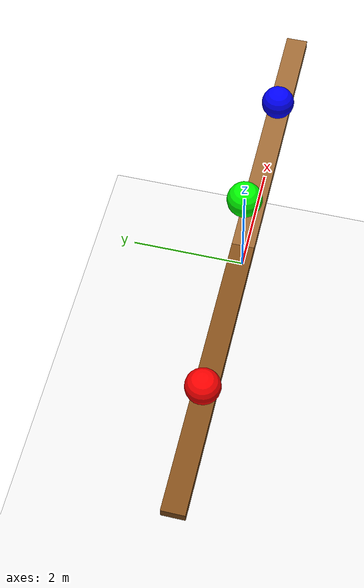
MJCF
<mujoco>
  <option gravity="0 0 -9.81"/>
  <worldbody>
    <body name="ground" pos="0 0 -10">
      <geom type="plane" size="30 30 0.1" rgba="0.9 0.9 0.9 1"/>
    </body>
    <body name="plank" pos="0 0 0.5">
      <!-- One end of plank has denser mass simulated via a heavy box over one side -->
      <geom type="box" size="2.5 0.2 0.1" density="2" pos="-2.5 0 0" rgba="0.5 0.3 0.1 1"/>
      <geom type="box" size="2.5 0.2 0.1" density="0.5" pos="2.5 0 0" rgba="0.6 0.4 0.2 1"/>
      <joint name="plank_joint" type="hinge" axis="0 1 0"/>
    </body>
    <body name="mass_left" pos="-3 0 1">
      <geom type="sphere" size="0.3" density="2" rgba="1 0 0 1"/>
    </body>
    <body name="mass_right" pos="3 0 1">
      <geom type="sphere" size="0.3" density="2" rgba="0 0 1 1"/>
    </body>
    <body name="mass_to_place" pos="0 0 2">
      <geom type="sphere" size="0.3" density="2" rgba="0 1 0 1"/>
    </body>
  </worldbody>
</mujoco>
